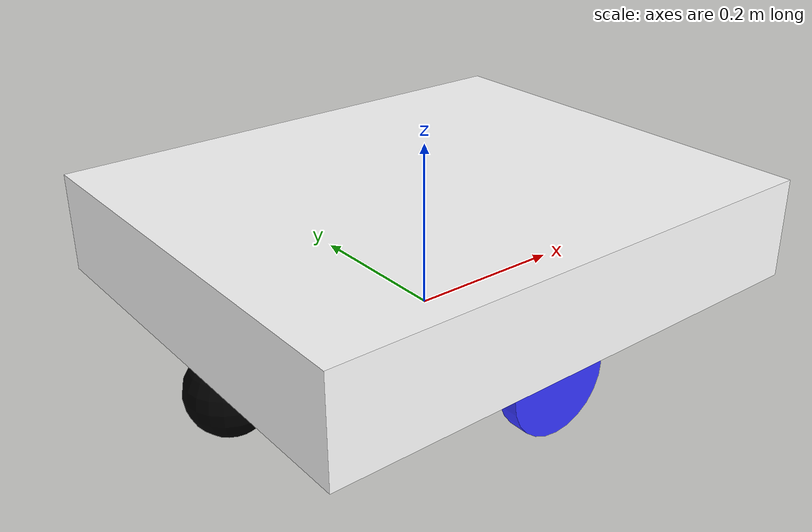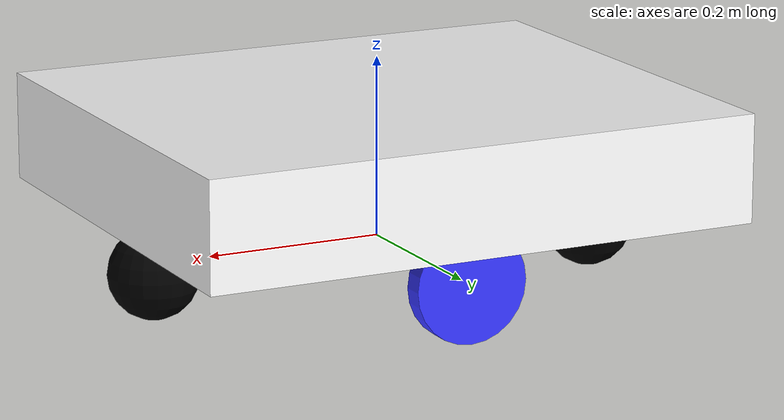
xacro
<?xml version="1.0"?>
<robot xmlns:xacro="http://www.ros.org/wiki/xacro" >

    <xacro:include filename="inertial_macros.xacro"/>

    <material name="white">
        <color rgba="1 1 1 1"/>
    </material>
    <material name="orange">
        <color rgba="1 0.3 0.1 1"/>
    </material>
    <material name="blue">
        <color rgba="0.2 0.2 1 1"/>
    </material>
    <material name="black">
        <color rgba="0 0 0 1"/>
    </material>
    <material name="red">
        <color rgba="1 0 0 1"/>
    </material>

    <!-- BASE LINK -->

    <link name="base_link">
    </link>

    <!-- BASE FOOTPRINT     -->
    <joint name="base_footprint_joint" type="fixed">
        <parent link="base_link"/>
        <child link="base_footprint"/>
        <origin xyz="0 0 0" rpy="0 0 0"/>
    </joint>

    <link name="base_footprint">
    </link>

    <!-- CHASSIS LINK  -->
    <joint name="chassis_joint" type="fixed">
        <parent link="base_link"/>
        <child link="chassis"/>
        <origin xyz="-0.315 0.0 0.0"/>
    </joint>

    <link name="chassis">
        <visual>
            <origin xyz="0.315 0.0 0.1" rpy="0.0 0.0 0.0"/>
            <geometry>
                <box size="0.63 0.53 0.12"/>
            </geometry>
            <material name="white"/>
        </visual>
        <collision>
            <origin xyz="0.315 0.0 0.1" rpy="0.0 0.0 0.0"/>
            <geometry>
                <box size="0.63 0.53 0.12"/>
            </geometry>
        </collision>
        <xacro:inertial_box mass="0.5" x="0.63" y="0.53" z="0.12">
            <origin xyz="0.315 0.0 0.1" rpy="0.0 0.0 0.0"/>
        </xacro:inertial_box>
    </link>
    <gazebo reference="chassis">
        <material>
            Gazebo/White
        </material>
    </gazebo>

    <!-- LEFT WHEEL -->
    <joint name="left_wheel_joint" type="continuous">
        <parent link="base_link"/>
        <child link="left_wheel"/>
        <origin xyz="0.0 0.2125 0.0" rpy="-${pi/2} 0 0"/>
        <axis xyz="0.0 0.0 1.0"/>
    </joint>

    <link name="left_wheel">
        <visual>
            <geometry>
                <cylinder radius="0.0635" length="0.024"/>
            </geometry>
            <material name="blue"/>
        </visual>
        <collision>
            <geometry>
                <sphere radius="0.0635"/>
            </geometry>
        </collision>
        <xacro:inertial_cylinder mass="0.1" length="0.024" radius="0.0635">
            <origin xyz="0 0 0" rpy="0 0 0"/>
        </xacro:inertial_cylinder>
    </link>
    <gazebo reference="left_wheel">
        <material>
            Gazebo/Blue
        </material>
    </gazebo>

    <!-- RIGHT WHEEL -->
    <joint name="right_wheel_joint" type="continuous">
        <parent link="base_link"/>
        <child link="right_wheel"/>
        <origin xyz="0.0 -0.2125 0.0" rpy="${pi/2} 0 0"/>
        <axis xyz="0.0 0.0 -1.0"/>
    </joint>

    <link name="right_wheel">
        <visual>
            <geometry>
                <cylinder radius="0.0635" length="0.024"/>
            </geometry>
            <material name="blue"/>
        </visual>
        <collision>
            <geometry>
                <sphere radius="0.0635"/>
            </geometry>
        </collision>
        <xacro:inertial_cylinder mass="0.1" length="0.024" radius="0.0635">
            <origin xyz="0 0 0" rpy="0 0 0"/>
        </xacro:inertial_cylinder>
    </link>
    <gazebo reference="right_wheel">
        <material>
            Gazebo/Blue
        </material>
    </gazebo>

    <!-- CASTER WHEEL REAR LINK  -->
    <joint name="rear_caster_wheel_joint" type="fixed">
        <parent link="chassis"/>
        <child link="rear_caster_wheel"/>
        <origin xyz="0.58 0.0 -0.01"/>
    </joint>
    <link name="rear_caster_wheel">
        <visual>
            <geometry>
                <sphere radius="0.05"/>
            </geometry>
            <material name="black"/>
        </visual>
        <collision>
            <geometry>
                <sphere radius="0.05"/>
            </geometry>
        </collision>
        <xacro:inertial_sphere mass="0.1" radius="0.05">
            <origin xyz="0.0 0.0 0.0" rpy="0.0 0.0 0.0"/>
        </xacro:inertial_sphere>
    </link>
    <gazebo reference="rear_caster_wheel">
        <material>
            Gazebo/Black
        </material>
    </gazebo>

    <!-- CASTER WHEEL BACK LINK  -->
    <joint name="back_caster_wheel_joint" type="fixed">
        <parent link="chassis"/>
        <child link="back_caster_wheel"/>
        <origin xyz="0.05 0.0 -0.015"/>
    </joint>
    <link name="back_caster_wheel">
        <visual>
            <geometry>
                <sphere radius="0.05"/>
            </geometry>
            <material name="black"/>
        </visual>
        <collision>
            <geometry>
                <sphere radius="0.05"/>
            </geometry>
        </collision>
        <xacro:inertial_sphere mass="0.1" radius="0.05">
            <origin xyz="0.0 0.0 0.0" rpy="0.0 0.0 0.0"/>
        </xacro:inertial_sphere>
    </link>
    <gazebo reference="back_caster_wheel">
        <material>
            Gazebo/Black
        </material>
        <mu1 value="0.001"></mu1>
        <mu2 value="0.001"></mu2>
    </gazebo>

</robot>
